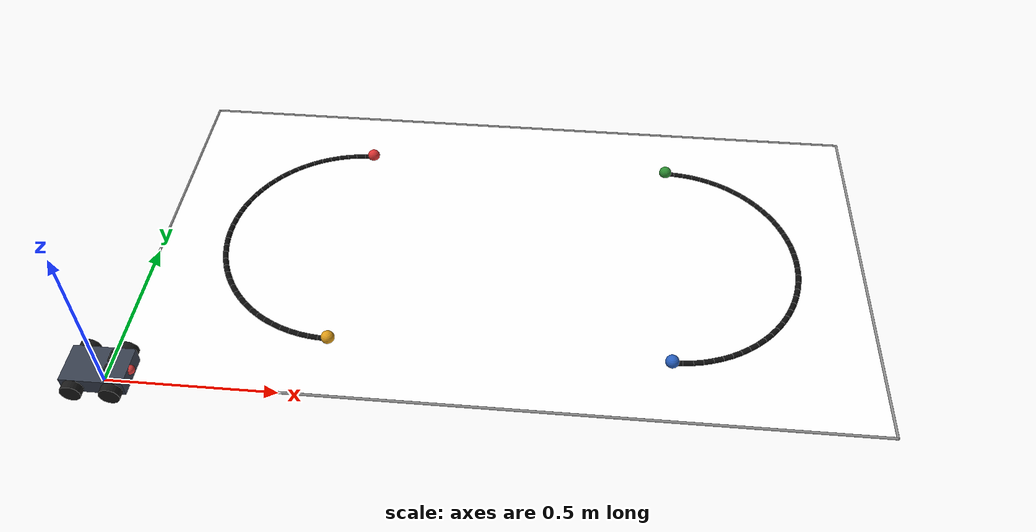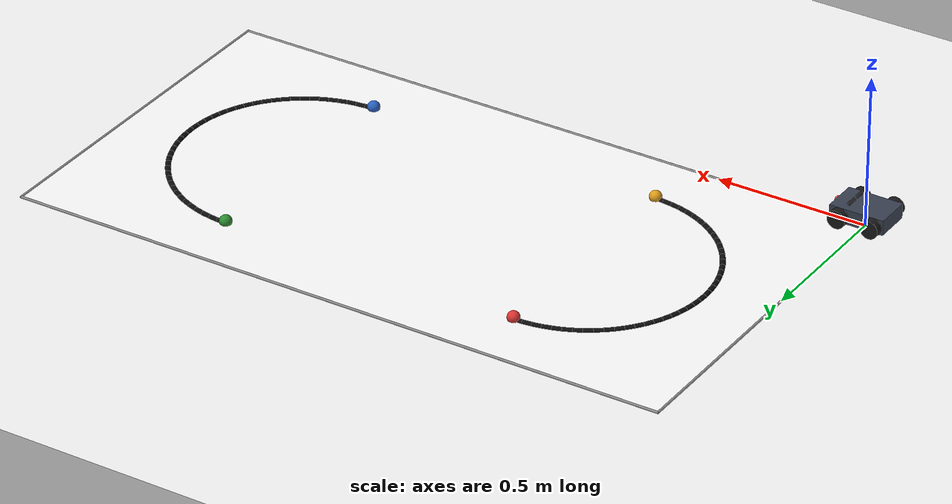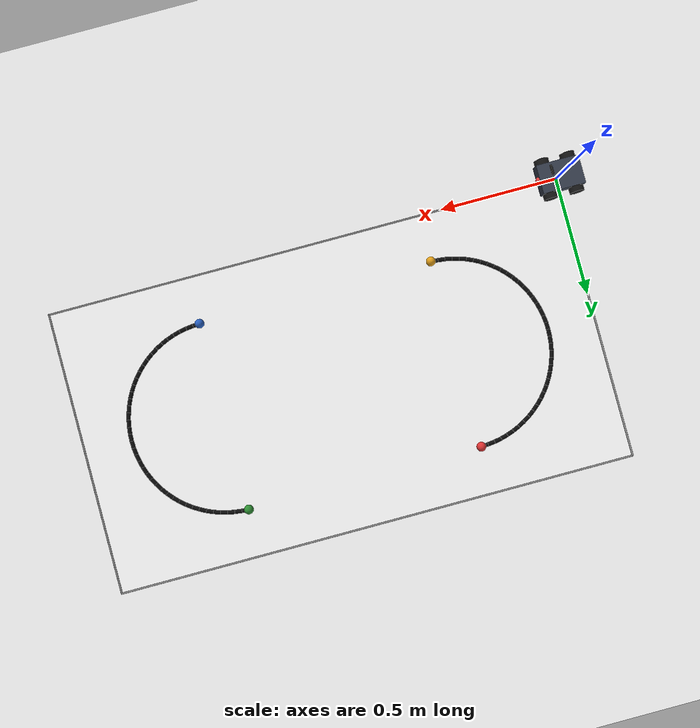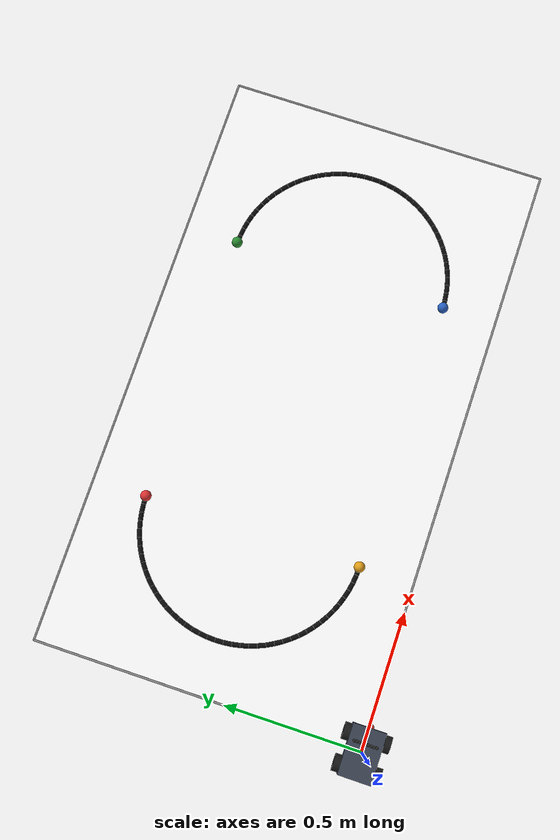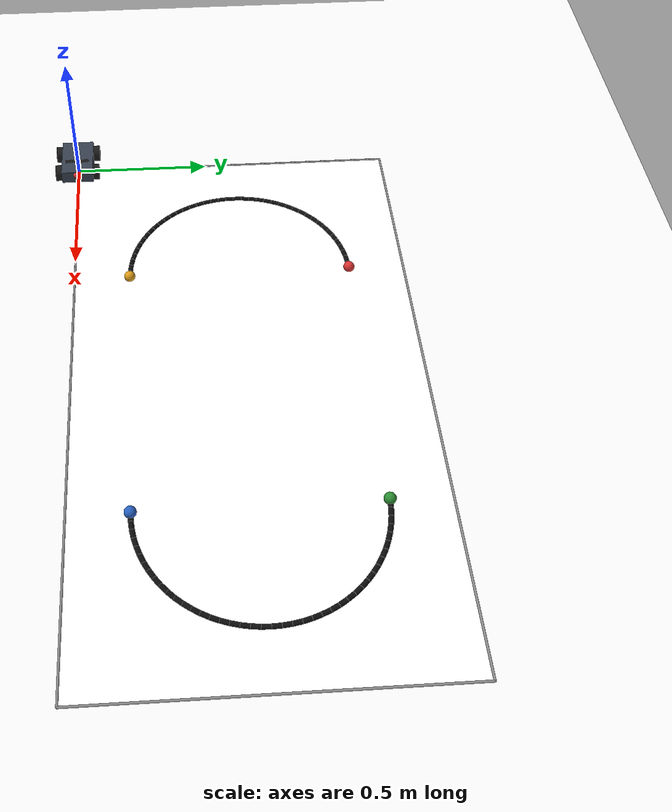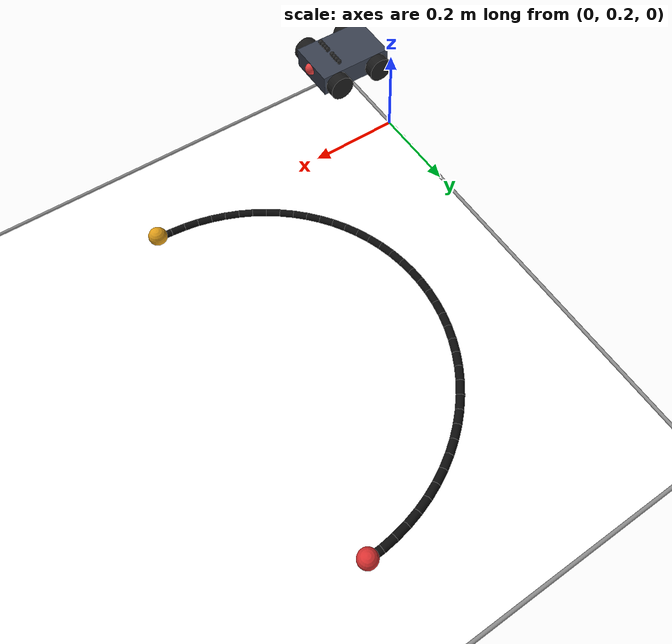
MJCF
<mujoco model="artemis_mudri_demo">
  <compiler angle="degree" coordinate="local"/>
  <option timestep="0.01" gravity="0.00 0.00 -9.81" integrator="RK4"/>
  <visual>
    <headlight ambient="0.450 0.450 0.450" diffuse="0.650 0.650 0.650" specular="0.150 0.150 0.150"/>
    <rgba haze="1.000 1.000 1.000 1.000"/>
  </visual>
  <default>
    <joint damping="0.8"/>
    <geom friction="0.8 0.1 0.1" rgba="0.880 0.900 0.920 1.000"/>
    <velocity kv="80"/>
  </default>
  <include file="track.xml"/>
  <include file="car.xml"/>
</mujoco>

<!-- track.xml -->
<mujoco>
  <worldbody>
    <geom name="ground" type="plane" pos="1.100 0.600 0" size="3 3 0.1" rgba="0.980 0.980 0.980 1.000"/>
        <geom name="field" type="box" pos="1.100 0.600 0.001" size="1.100 0.600 0.001" rgba="1.000 1.000 1.000 1.000" contype="0" conaffinity="0"/>
        <geom name="boundary_top" type="capsule" fromto="0.000 0.000 0.002 2.200 0.000 0.002" size="0.004" rgba="0.550 0.550 0.550 1.000" contype="0" conaffinity="0"/>
        <geom name="boundary_bottom" type="capsule" fromto="0.000 1.200 0.002 2.200 1.200 0.002" size="0.004" rgba="0.550 0.550 0.550 1.000" contype="0" conaffinity="0"/>
        <geom name="boundary_left" type="capsule" fromto="0.000 0.000 0.002 0.000 1.200 0.002" size="0.004" rgba="0.550 0.550 0.550 1.000" contype="0" conaffinity="0"/>
        <geom name="boundary_right" type="capsule" fromto="2.200 0.000 0.002 2.200 1.200 0.002" size="0.004" rgba="0.550 0.550 0.550 1.000" contype="0" conaffinity="0"/>
        <geom name="left_arc_0" type="capsule" fromto="0.6000 1.0000 0.0010 0.5701 0.9989 0.0010" size="0.0090" rgba="0.050 0.050 0.050 1.000" contype="0" conaffinity="0"/>
    <geom name="left_arc_1" type="capsule" fromto="0.5701 0.9989 0.0010 0.5404 0.9955 0.0010" size="0.0090" rgba="0.050 0.050 0.050 1.000" contype="0" conaffinity="0"/>
    <geom name="left_arc_2" type="capsule" fromto="0.5404 0.9955 0.0010 0.5110 0.9900 0.0010" size="0.0090" rgba="0.050 0.050 0.050 1.000" contype="0" conaffinity="0"/>
    <geom name="left_arc_3" type="capsule" fromto="0.5110 0.9900 0.0010 0.4821 0.9822 0.0010" size="0.0090" rgba="0.050 0.050 0.050 1.000" contype="0" conaffinity="0"/>
    <geom name="left_arc_4" type="capsule" fromto="0.4821 0.9822 0.0010 0.4539 0.9723 0.0010" size="0.0090" rgba="0.050 0.050 0.050 1.000" contype="0" conaffinity="0"/>
    <geom name="left_arc_5" type="capsule" fromto="0.4539 0.9723 0.0010 0.4264 0.9604 0.0010" size="0.0090" rgba="0.050 0.050 0.050 1.000" contype="0" conaffinity="0"/>
    <geom name="left_arc_6" type="capsule" fromto="0.4264 0.9604 0.0010 0.4000 0.9464 0.0010" size="0.0090" rgba="0.050 0.050 0.050 1.000" contype="0" conaffinity="0"/>
    <geom name="left_arc_7" type="capsule" fromto="0.4000 0.9464 0.0010 0.3747 0.9305 0.0010" size="0.0090" rgba="0.050 0.050 0.050 1.000" contype="0" conaffinity="0"/>
    <geom name="left_arc_8" type="capsule" fromto="0.3747 0.9305 0.0010 0.3506 0.9127 0.0010" size="0.0090" rgba="0.050 0.050 0.050 1.000" contype="0" conaffinity="0"/>
    <geom name="left_arc_9" type="capsule" fromto="0.3506 0.9127 0.0010 0.3279 0.8932 0.0010" size="0.0090" rgba="0.050 0.050 0.050 1.000" contype="0" conaffinity="0"/>
    <geom name="left_arc_10" type="capsule" fromto="0.3279 0.8932 0.0010 0.3068 0.8721 0.0010" size="0.0090" rgba="0.050 0.050 0.050 1.000" contype="0" conaffinity="0"/>
    <geom name="left_arc_11" type="capsule" fromto="0.3068 0.8721 0.0010 0.2873 0.8494 0.0010" size="0.0090" rgba="0.050 0.050 0.050 1.000" contype="0" conaffinity="0"/>
    <geom name="left_arc_12" type="capsule" fromto="0.2873 0.8494 0.0010 0.2695 0.8253 0.0010" size="0.0090" rgba="0.050 0.050 0.050 1.000" contype="0" conaffinity="0"/>
    <geom name="left_arc_13" type="capsule" fromto="0.2695 0.8253 0.0010 0.2536 0.8000 0.0010" size="0.0090" rgba="0.050 0.050 0.050 1.000" contype="0" conaffinity="0"/>
    <geom name="left_arc_14" type="capsule" fromto="0.2536 0.8000 0.0010 0.2396 0.7736 0.0010" size="0.0090" rgba="0.050 0.050 0.050 1.000" contype="0" conaffinity="0"/>
    <geom name="left_arc_15" type="capsule" fromto="0.2396 0.7736 0.0010 0.2277 0.7461 0.0010" size="0.0090" rgba="0.050 0.050 0.050 1.000" contype="0" conaffinity="0"/>
    <geom name="left_arc_16" type="capsule" fromto="0.2277 0.7461 0.0010 0.2178 0.7179 0.0010" size="0.0090" rgba="0.050 0.050 0.050 1.000" contype="0" conaffinity="0"/>
    <geom name="left_arc_17" type="capsule" fromto="0.2178 0.7179 0.0010 0.2100 0.6890 0.0010" size="0.0090" rgba="0.050 0.050 0.050 1.000" contype="0" conaffinity="0"/>
    <geom name="left_arc_18" type="capsule" fromto="0.2100 0.6890 0.0010 0.2045 0.6596 0.0010" size="0.0090" rgba="0.050 0.050 0.050 1.000" contype="0" conaffinity="0"/>
    <geom name="left_arc_19" type="capsule" fromto="0.2045 0.6596 0.0010 0.2011 0.6299 0.0010" size="0.0090" rgba="0.050 0.050 0.050 1.000" contype="0" conaffinity="0"/>
    <geom name="left_arc_20" type="capsule" fromto="0.2011 0.6299 0.0010 0.2000 0.6000 0.0010" size="0.0090" rgba="0.050 0.050 0.050 1.000" contype="0" conaffinity="0"/>
    <geom name="left_arc_21" type="capsule" fromto="0.2000 0.6000 0.0010 0.2011 0.5701 0.0010" size="0.0090" rgba="0.050 0.050 0.050 1.000" contype="0" conaffinity="0"/>
    <geom name="left_arc_22" type="capsule" fromto="0.2011 0.5701 0.0010 0.2045 0.5404 0.0010" size="0.0090" rgba="0.050 0.050 0.050 1.000" contype="0" conaffinity="0"/>
    <geom name="left_arc_23" type="capsule" fromto="0.2045 0.5404 0.0010 0.2100 0.5110 0.0010" size="0.0090" rgba="0.050 0.050 0.050 1.000" contype="0" conaffinity="0"/>
    <geom name="left_arc_24" type="capsule" fromto="0.2100 0.5110 0.0010 0.2178 0.4821 0.0010" size="0.0090" rgba="0.050 0.050 0.050 1.000" contype="0" conaffinity="0"/>
    <geom name="left_arc_25" type="capsule" fromto="0.2178 0.4821 0.0010 0.2277 0.4539 0.0010" size="0.0090" rgba="0.050 0.050 0.050 1.000" contype="0" conaffinity="0"/>
    <geom name="left_arc_26" type="capsule" fromto="0.2277 0.4539 0.0010 0.2396 0.4264 0.0010" size="0.0090" rgba="0.050 0.050 0.050 1.000" contype="0" conaffinity="0"/>
    <geom name="left_arc_27" type="capsule" fromto="0.2396 0.4264 0.0010 0.2536 0.4000 0.0010" size="0.0090" rgba="0.050 0.050 0.050 1.000" contype="0" conaffinity="0"/>
    <geom name="left_arc_28" type="capsule" fromto="0.2536 0.4000 0.0010 0.2695 0.3747 0.0010" size="0.0090" rgba="0.050 0.050 0.050 1.000" contype="0" conaffinity="0"/>
    <geom name="left_arc_29" type="capsule" fromto="0.2695 0.3747 0.0010 0.2873 0.3506 0.0010" size="0.0090" rgba="0.050 0.050 0.050 1.000" contype="0" conaffinity="0"/>
    <geom name="left_arc_30" type="capsule" fromto="0.2873 0.3506 0.0010 0.3068 0.3279 0.0010" size="0.0090" rgba="0.050 0.050 0.050 1.000" contype="0" conaffinity="0"/>
    <geom name="left_arc_31" type="capsule" fromto="0.3068 0.3279 0.0010 0.3279 0.3068 0.0010" size="0.0090" rgba="0.050 0.050 0.050 1.000" contype="0" conaffinity="0"/>
    <geom name="left_arc_32" type="capsule" fromto="0.3279 0.3068 0.0010 0.3506 0.2873 0.0010" size="0.0090" rgba="0.050 0.050 0.050 1.000" contype="0" conaffinity="0"/>
    <geom name="left_arc_33" type="capsule" fromto="0.3506 0.2873 0.0010 0.3747 0.2695 0.0010" size="0.0090" rgba="0.050 0.050 0.050 1.000" contype="0" conaffinity="0"/>
    <geom name="left_arc_34" type="capsule" fromto="0.3747 0.2695 0.0010 0.4000 0.2536 0.0010" size="0.0090" rgba="0.050 0.050 0.050 1.000" contype="0" conaffinity="0"/>
    <geom name="left_arc_35" type="capsule" fromto="0.4000 0.2536 0.0010 0.4264 0.2396 0.0010" size="0.0090" rgba="0.050 0.050 0.050 1.000" contype="0" conaffinity="0"/>
    <geom name="left_arc_36" type="capsule" fromto="0.4264 0.2396 0.0010 0.4539 0.2277 0.0010" size="0.0090" rgba="0.050 0.050 0.050 1.000" contype="0" conaffinity="0"/>
    <geom name="left_arc_37" type="capsule" fromto="0.4539 0.2277 0.0010 0.4821 0.2178 0.0010" size="0.0090" rgba="0.050 0.050 0.050 1.000" contype="0" conaffinity="0"/>
    <geom name="left_arc_38" type="capsule" fromto="0.4821 0.2178 0.0010 0.5110 0.2100 0.0010" size="0.0090" rgba="0.050 0.050 0.050 1.000" contype="0" conaffinity="0"/>
    <geom name="left_arc_39" type="capsule" fromto="0.5110 0.2100 0.0010 0.5404 0.2045 0.0010" size="0.0090" rgba="0.050 0.050 0.050 1.000" contype="0" conaffinity="0"/>
    <geom name="left_arc_40" type="capsule" fromto="0.5404 0.2045 0.0010 0.5701 0.2011 0.0010" size="0.0090" rgba="0.050 0.050 0.050 1.000" contype="0" conaffinity="0"/>
    <geom name="left_arc_41" type="capsule" fromto="0.5701 0.2011 0.0010 0.6000 0.2000 0.0010" size="0.0090" rgba="0.050 0.050 0.050 1.000" contype="0" conaffinity="0"/>
        <geom name="right_arc_0" type="capsule" fromto="1.6000 1.0000 0.0010 1.6299 0.9989 0.0010" size="0.0090" rgba="0.050 0.050 0.050 1.000" contype="0" conaffinity="0"/>
    <geom name="right_arc_1" type="capsule" fromto="1.6299 0.9989 0.0010 1.6596 0.9955 0.0010" size="0.0090" rgba="0.050 0.050 0.050 1.000" contype="0" conaffinity="0"/>
    <geom name="right_arc_2" type="capsule" fromto="1.6596 0.9955 0.0010 1.6890 0.9900 0.0010" size="0.0090" rgba="0.050 0.050 0.050 1.000" contype="0" conaffinity="0"/>
    <geom name="right_arc_3" type="capsule" fromto="1.6890 0.9900 0.0010 1.7179 0.9822 0.0010" size="0.0090" rgba="0.050 0.050 0.050 1.000" contype="0" conaffinity="0"/>
    <geom name="right_arc_4" type="capsule" fromto="1.7179 0.9822 0.0010 1.7461 0.9723 0.0010" size="0.0090" rgba="0.050 0.050 0.050 1.000" contype="0" conaffinity="0"/>
    <geom name="right_arc_5" type="capsule" fromto="1.7461 0.9723 0.0010 1.7736 0.9604 0.0010" size="0.0090" rgba="0.050 0.050 0.050 1.000" contype="0" conaffinity="0"/>
    <geom name="right_arc_6" type="capsule" fromto="1.7736 0.9604 0.0010 1.8000 0.9464 0.0010" size="0.0090" rgba="0.050 0.050 0.050 1.000" contype="0" conaffinity="0"/>
    <geom name="right_arc_7" type="capsule" fromto="1.8000 0.9464 0.0010 1.8253 0.9305 0.0010" size="0.0090" rgba="0.050 0.050 0.050 1.000" contype="0" conaffinity="0"/>
    <geom name="right_arc_8" type="capsule" fromto="1.8253 0.9305 0.0010 1.8494 0.9127 0.0010" size="0.0090" rgba="0.050 0.050 0.050 1.000" contype="0" conaffinity="0"/>
    <geom name="right_arc_9" type="capsule" fromto="1.8494 0.9127 0.0010 1.8721 0.8932 0.0010" size="0.0090" rgba="0.050 0.050 0.050 1.000" contype="0" conaffinity="0"/>
    <geom name="right_arc_10" type="capsule" fromto="1.8721 0.8932 0.0010 1.8932 0.8721 0.0010" size="0.0090" rgba="0.050 0.050 0.050 1.000" contype="0" conaffinity="0"/>
    <geom name="right_arc_11" type="capsule" fromto="1.8932 0.8721 0.0010 1.9127 0.8494 0.0010" size="0.0090" rgba="0.050 0.050 0.050 1.000" contype="0" conaffinity="0"/>
    <geom name="right_arc_12" type="capsule" fromto="1.9127 0.8494 0.0010 1.9305 0.8253 0.0010" size="0.0090" rgba="0.050 0.050 0.050 1.000" contype="0" conaffinity="0"/>
    <geom name="right_arc_13" type="capsule" fromto="1.9305 0.8253 0.0010 1.9464 0.8000 0.0010" size="0.0090" rgba="0.050 0.050 0.050 1.000" contype="0" conaffinity="0"/>
    <geom name="right_arc_14" type="capsule" fromto="1.9464 0.8000 0.0010 1.9604 0.7736 0.0010" size="0.0090" rgba="0.050 0.050 0.050 1.000" contype="0" conaffinity="0"/>
    <geom name="right_arc_15" type="capsule" fromto="1.9604 0.7736 0.0010 1.9723 0.7461 0.0010" size="0.0090" rgba="0.050 0.050 0.050 1.000" contype="0" conaffinity="0"/>
    <geom name="right_arc_16" type="capsule" fromto="1.9723 0.7461 0.0010 1.9822 0.7179 0.0010" size="0.0090" rgba="0.050 0.050 0.050 1.000" contype="0" conaffinity="0"/>
    <geom name="right_arc_17" type="capsule" fromto="1.9822 0.7179 0.0010 1.9900 0.6890 0.0010" size="0.0090" rgba="0.050 0.050 0.050 1.000" contype="0" conaffinity="0"/>
    <geom name="right_arc_18" type="capsule" fromto="1.9900 0.6890 0.0010 1.9955 0.6596 0.0010" size="0.0090" rgba="0.050 0.050 0.050 1.000" contype="0" conaffinity="0"/>
    <geom name="right_arc_19" type="capsule" fromto="1.9955 0.6596 0.0010 1.9989 0.6299 0.0010" size="0.0090" rgba="0.050 0.050 0.050 1.000" contype="0" conaffinity="0"/>
    <geom name="right_arc_20" type="capsule" fromto="1.9989 0.6299 0.0010 2.0000 0.6000 0.0010" size="0.0090" rgba="0.050 0.050 0.050 1.000" contype="0" conaffinity="0"/>
    <geom name="right_arc_21" type="capsule" fromto="2.0000 0.6000 0.0010 1.9989 0.5701 0.0010" size="0.0090" rgba="0.050 0.050 0.050 1.000" contype="0" conaffinity="0"/>
    <geom name="right_arc_22" type="capsule" fromto="1.9989 0.5701 0.0010 1.9955 0.5404 0.0010" size="0.0090" rgba="0.050 0.050 0.050 1.000" contype="0" conaffinity="0"/>
    <geom name="right_arc_23" type="capsule" fromto="1.9955 0.5404 0.0010 1.9900 0.5110 0.0010" size="0.0090" rgba="0.050 0.050 0.050 1.000" contype="0" conaffinity="0"/>
    <geom name="right_arc_24" type="capsule" fromto="1.9900 0.5110 0.0010 1.9822 0.4821 0.0010" size="0.0090" rgba="0.050 0.050 0.050 1.000" contype="0" conaffinity="0"/>
    <geom name="right_arc_25" type="capsule" fromto="1.9822 0.4821 0.0010 1.9723 0.4539 0.0010" size="0.0090" rgba="0.050 0.050 0.050 1.000" contype="0" conaffinity="0"/>
    <geom name="right_arc_26" type="capsule" fromto="1.9723 0.4539 0.0010 1.9604 0.4264 0.0010" size="0.0090" rgba="0.050 0.050 0.050 1.000" contype="0" conaffinity="0"/>
    <geom name="right_arc_27" type="capsule" fromto="1.9604 0.4264 0.0010 1.9464 0.4000 0.0010" size="0.0090" rgba="0.050 0.050 0.050 1.000" contype="0" conaffinity="0"/>
    <geom name="right_arc_28" type="capsule" fromto="1.9464 0.4000 0.0010 1.9305 0.3747 0.0010" size="0.0090" rgba="0.050 0.050 0.050 1.000" contype="0" conaffinity="0"/>
    <geom name="right_arc_29" type="capsule" fromto="1.9305 0.3747 0.0010 1.9127 0.3506 0.0010" size="0.0090" rgba="0.050 0.050 0.050 1.000" contype="0" conaffinity="0"/>
    <geom name="right_arc_30" type="capsule" fromto="1.9127 0.3506 0.0010 1.8932 0.3279 0.0010" size="0.0090" rgba="0.050 0.050 0.050 1.000" contype="0" conaffinity="0"/>
    <geom name="right_arc_31" type="capsule" fromto="1.8932 0.3279 0.0010 1.8721 0.3068 0.0010" size="0.0090" rgba="0.050 0.050 0.050 1.000" contype="0" conaffinity="0"/>
    <geom name="right_arc_32" type="capsule" fromto="1.8721 0.3068 0.0010 1.8494 0.2873 0.0010" size="0.0090" rgba="0.050 0.050 0.050 1.000" contype="0" conaffinity="0"/>
    <geom name="right_arc_33" type="capsule" fromto="1.8494 0.2873 0.0010 1.8253 0.2695 0.0010" size="0.0090" rgba="0.050 0.050 0.050 1.000" contype="0" conaffinity="0"/>
    <geom name="right_arc_34" type="capsule" fromto="1.8253 0.2695 0.0010 1.8000 0.2536 0.0010" size="0.0090" rgba="0.050 0.050 0.050 1.000" contype="0" conaffinity="0"/>
    <geom name="right_arc_35" type="capsule" fromto="1.8000 0.2536 0.0010 1.7736 0.2396 0.0010" size="0.0090" rgba="0.050 0.050 0.050 1.000" contype="0" conaffinity="0"/>
    <geom name="right_arc_36" type="capsule" fromto="1.7736 0.2396 0.0010 1.7461 0.2277 0.0010" size="0.0090" rgba="0.050 0.050 0.050 1.000" contype="0" conaffinity="0"/>
    <geom name="right_arc_37" type="capsule" fromto="1.7461 0.2277 0.0010 1.7179 0.2178 0.0010" size="0.0090" rgba="0.050 0.050 0.050 1.000" contype="0" conaffinity="0"/>
    <geom name="right_arc_38" type="capsule" fromto="1.7179 0.2178 0.0010 1.6890 0.2100 0.0010" size="0.0090" rgba="0.050 0.050 0.050 1.000" contype="0" conaffinity="0"/>
    <geom name="right_arc_39" type="capsule" fromto="1.6890 0.2100 0.0010 1.6596 0.2045 0.0010" size="0.0090" rgba="0.050 0.050 0.050 1.000" contype="0" conaffinity="0"/>
    <geom name="right_arc_40" type="capsule" fromto="1.6596 0.2045 0.0010 1.6299 0.2011 0.0010" size="0.0090" rgba="0.050 0.050 0.050 1.000" contype="0" conaffinity="0"/>
    <geom name="right_arc_41" type="capsule" fromto="1.6299 0.2011 0.0010 1.6000 0.2000 0.0010" size="0.0090" rgba="0.050 0.050 0.050 1.000" contype="0" conaffinity="0"/>
        <site name="anchor_A" pos="0.6000 1.0000 0.0100" size="0.0200" type="sphere" rgba="0.870 0.200 0.200 1.000"/>
    <site name="anchor_B" pos="1.6000 1.0000 0.0100" size="0.0200" type="sphere" rgba="0.180 0.560 0.200 1.000"/>
    <site name="anchor_C" pos="1.6000 0.2000 0.0100" size="0.0200" type="sphere" rgba="0.160 0.380 0.760 1.000"/>
    <site name="anchor_D" pos="0.6000 0.2000 0.0100" size="0.0200" type="sphere" rgba="0.880 0.620 0.100 1.000"/>
  </worldbody>
</mujoco>

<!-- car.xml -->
<mujoco>
  <worldbody>
    <body name="car" pos="0.000 0.000 0.050">
          <joint name="car_x" type="slide" axis="1 0 0"/>
          <joint name="car_y" type="slide" axis="0 1 0"/>
          <joint name="car_yaw" type="hinge" axis="0 0 1"/>
          <geom name="chassis" type="box" size="0.090 0.060 0.025" rgba="0.220 0.250 0.310 1.000" contype="0" conaffinity="0"/>
          <site name="car_nose" pos="0.0900 0.0000 0.0100" size="0.0140" type="sphere" rgba="0.900 0.250 0.250 1.000"/>
          <site name="sensor_0" pos="0.0850 0.0400 -0.0150" size="0.0050" type="sphere" rgba="0.950 0.650 0.200 1.000"/>
    <site name="sensor_1" pos="0.0850 0.0300 -0.0150" size="0.0050" type="sphere" rgba="0.950 0.650 0.200 1.000"/>
    <site name="sensor_2" pos="0.0850 0.0200 -0.0150" size="0.0050" type="sphere" rgba="0.950 0.650 0.200 1.000"/>
    <site name="sensor_3" pos="0.0850 0.0100 -0.0150" size="0.0050" type="sphere" rgba="0.950 0.650 0.200 1.000"/>
    <site name="sensor_4" pos="0.0850 -0.0100 -0.0150" size="0.0050" type="sphere" rgba="0.950 0.650 0.200 1.000"/>
    <site name="sensor_5" pos="0.0850 -0.0200 -0.0150" size="0.0050" type="sphere" rgba="0.950 0.650 0.200 1.000"/>
    <site name="sensor_6" pos="0.0850 -0.0300 -0.0150" size="0.0050" type="sphere" rgba="0.950 0.650 0.200 1.000"/>
    <site name="sensor_7" pos="0.0850 -0.0400 -0.0150" size="0.0050" type="sphere" rgba="0.950 0.650 0.200 1.000"/>
          <site name="led_0" pos="0.0350 0.0400 0.0350" size="0.0060" type="sphere" rgba="0.160 0.160 0.160 1.000"/>
    <site name="led_1" pos="0.0350 0.0300 0.0350" size="0.0060" type="sphere" rgba="0.160 0.160 0.160 1.000"/>
    <site name="led_2" pos="0.0350 0.0200 0.0350" size="0.0060" type="sphere" rgba="0.160 0.160 0.160 1.000"/>
    <site name="led_3" pos="0.0350 0.0100 0.0350" size="0.0060" type="sphere" rgba="0.160 0.160 0.160 1.000"/>
    <site name="led_4" pos="0.0350 -0.0100 0.0350" size="0.0060" type="sphere" rgba="0.160 0.160 0.160 1.000"/>
    <site name="led_5" pos="0.0350 -0.0200 0.0350" size="0.0060" type="sphere" rgba="0.160 0.160 0.160 1.000"/>
    <site name="led_6" pos="0.0350 -0.0300 0.0350" size="0.0060" type="sphere" rgba="0.160 0.160 0.160 1.000"/>
    <site name="led_7" pos="0.0350 -0.0400 0.0350" size="0.0060" type="sphere" rgba="0.160 0.160 0.160 1.000"/>
          <body name="front_left_wheel" pos="0.055 0.070 -0.005">
            <joint name="front_left_steer" type="hinge" axis="0 0 1"/>
            <geom name="front_left_wheel_geom" type="cylinder" size="0.030 0.014" rgba="0.100 0.100 0.100 1.000" contype="0" conaffinity="0" euler="90 0 0"/>
          </body>
          <body name="front_right_wheel" pos="0.055 -0.070 -0.005">
            <joint name="front_right_steer" type="hinge" axis="0 0 1"/>
            <geom name="front_right_wheel_geom" type="cylinder" size="0.030 0.014" rgba="0.100 0.100 0.100 1.000" contype="0" conaffinity="0" euler="90 0 0"/>
          </body>
          <body name="rear_left_wheel" pos="-0.055 0.070 -0.005">
            <geom name="rear_left_wheel_geom" type="cylinder" size="0.030 0.014" rgba="0.100 0.100 0.100 1.000" contype="0" conaffinity="0" euler="90 0 0"/>
          </body>
          <body name="rear_right_wheel" pos="-0.055 -0.070 -0.005">
            <geom name="rear_right_wheel_geom" type="cylinder" size="0.030 0.014" rgba="0.100 0.100 0.100 1.000" contype="0" conaffinity="0" euler="90 0 0"/>
          </body>
        </body>
  </worldbody>
  <actuator>
    <velocity name="x_drive" joint="car_x" kv="120"/>
        <velocity name="y_drive" joint="car_y" kv="120"/>
        <velocity name="yaw_drive" joint="car_yaw" kv="45"/>
  </actuator>
</mujoco>
